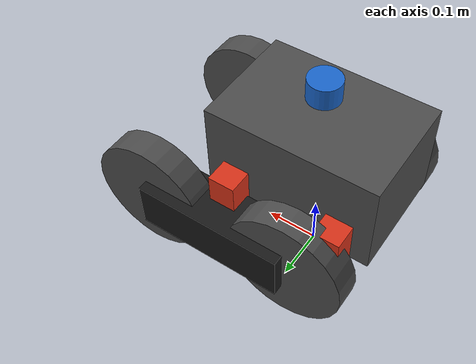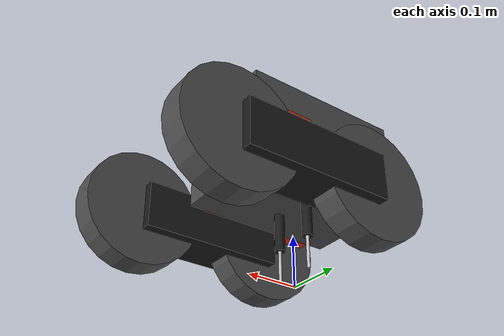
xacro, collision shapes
<?xml version="1.0"?>
<robot xmlns:xacro="http://www.ros.org/wiki/xacro" name="drobot">

  <xacro:include filename="$(find drobot_description)/urdf/properties.xacro"/>
  <xacro:include filename="$(find drobot_description)/urdf/materials.xacro"/>
  <xacro:include filename="$(find drobot_description)/urdf/macros.xacro"/>
  <xacro:include filename="$(find drobot_description)/urdf/gazebo.xacro"/>

  <xacro:arg name="use_sim" default="true"/>
  <xacro:arg name="use_ros2_control" default="true"/>

  <!-- ==================== BASE ==================== -->
  <link name="base_footprint"/>

  <joint name="base_footprint_joint" type="fixed">
    <parent link="base_footprint"/>
    <child link="base_link"/>
    <origin xyz="0 0 ${wheel_radius + base_height/2 + 0.05}" rpy="0 0 0"/>
  </joint>

  <link name="base_link">
    <visual>
      <!-- 어셈블리 STL → rpy로 Y-up→Z-up 변환 -->
      <origin xyz="${base_mesh_ox} ${base_mesh_oy} ${base_mesh_oz}"
              rpy="${asm_rpy}"/>
      <geometry>
        <mesh filename="package://drobot_description/meshes/base.stl"
              scale="0.001 0.001 0.001"/>
      </geometry>
      <material name="dark_gray"/>
    </visual>
    <collision>
      <geometry>
        <box size="${base_length} ${base_width} ${base_height}"/>
      </geometry>
    </collision>
    <inertial>
      <mass value="${base_mass}"/>
      <xacro:box_inertia m="${base_mass}" x="${base_length}" y="${base_width}" z="${base_height}"/>
    </inertial>
  </link>

  <!-- ==================== LEFT / RIGHT ==================== -->
  <xacro:side prefix="left"  y_reflect="1"/>
  <xacro:side prefix="right" y_reflect="-1"/>

  <!-- ==================== SENSORS ==================== -->
  <xacro:sensor_mount name="lidar" parent="base_link"
                       xyz="0 0 ${base_height/2 + 0.05}" rpy="0 0 0">
    <geometry><cylinder radius="0.03" length="0.04"/></geometry>
  </xacro:sensor_mount>

  <xacro:sensor_mount name="camera" parent="base_link"
                       xyz="${base_length/2} 0 0" rpy="0 0 0">
    <geometry><box size="0.03 0.08 0.03"/></geometry>
  </xacro:sensor_mount>

  <xacro:sensor_mount name="imu" parent="base_link"
                       xyz="0 0 0" rpy="0 0 0">
    <geometry><box size="0.02 0.02 0.01"/></geometry>
  </xacro:sensor_mount>

  <!-- ==================== ROS2 CONTROL ==================== -->
  <xacro:if value="$(arg use_ros2_control)">
    <xacro:include filename="$(find drobot_description)/urdf/ros2_control.xacro"/>
  </xacro:if>

</robot>

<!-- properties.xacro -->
<robot xmlns:xacro="http://www.ros.org/wiki/xacro">

  <xacro:property name="pi" value="3.14159265359"/>

  <!-- ===== Assembly→ROS 좌표 변환 =====
       SolidWorks: X=전후, Y=상하, Z=좌우
       ROS:        X=전후, Y=좌우, Z=상하
       변환: rpy="-pi/2 0 0" (Y↔Z 교환)
       ================================================ -->
  <xacro:property name="asm_rpy" value="${-pi/2} 0 0"/>

  <!-- ===== Base Body (318 x 183 x 210 mm) ===== -->
  <xacro:property name="base_length" value="0.318"/>
  <xacro:property name="base_width"  value="0.210"/>   <!-- SW Z → ROS Y -->
  <xacro:property name="base_height" value="0.183"/>   <!-- SW Y → ROS Z -->
  <xacro:property name="base_mass"   value="5.0"/>

  <!-- base mesh offset (after -90° X rotation) -->
  <xacro:property name="base_mesh_ox"  value="-0.16174"/>
  <xacro:property name="base_mesh_oy"  value="-0.19650"/>
  <xacro:property name="base_mesh_oz"  value="0.09650"/>

  <!-- ===== Arm (L자 변환 기어, 50x79x89 mm) ===== -->
  <xacro:property name="arm_size_x"  value="0.050"/>
  <xacro:property name="arm_size_y"  value="0.089"/>
  <xacro:property name="arm_size_z"  value="0.079"/>
  <xacro:property name="arm_mass"    value="0.3"/>

  <!-- arm joint 위치 (base_link 중심 기준, ROS 좌표) -->
  <xacro:property name="front_arm_x"  value="0.100"/>
  <xacro:property name="rear_arm_x"   value="-0.100"/>
  <xacro:property name="arm_y_offset" value="0.105"/>
  <xacro:property name="arm_z_offset" value="-0.050"/>

  <xacro:property name="arm_mesh_ox"  value="-0.02500"/>
  <xacro:property name="arm_mesh_oy"  value="-0.24760"/>
  <xacro:property name="arm_mesh_oz"  value="0.03934"/>

  <xacro:property name="arm_joint_lower" value="0.0"/>
  <xacro:property name="arm_joint_upper" value="${pi/2}"/>
  <xacro:property name="arm_joint_effort" value="10.0"/>
  <xacro:property name="arm_joint_velocity" value="1.0"/>

  <!-- ===== Side Frame (282 x 90 x 91 mm) ===== -->
  <xacro:property name="frame_length" value="0.282"/>
  <xacro:property name="frame_width"  value="0.091"/>
  <xacro:property name="frame_height" value="0.090"/>
  <xacro:property name="frame_mass"   value="0.5"/>

  <xacro:property name="frame_l_mesh_ox" value="-0.14106"/>
  <xacro:property name="frame_l_mesh_oy" value="-0.32545"/>
  <xacro:property name="frame_l_mesh_oz" value="0.09901"/>

  <xacro:property name="frame_r_mesh_ox" value="-0.14106"/>
  <xacro:property name="frame_r_mesh_oy" value="-0.06799"/>
  <xacro:property name="frame_r_mesh_oz" value="0.04545"/>

  <!-- arm→side_frame 연결 오프셋 -->
  <xacro:property name="arm_to_frame_x" value="0.0"/>
  <xacro:property name="arm_to_frame_y" value="0.05"/>
  <xacro:property name="arm_to_frame_z" value="-0.06"/>

  <!-- ===== Wheel (개별 파트, 223x223x52 mm) ===== -->
  <xacro:property name="wheel_radius"    value="0.1117"/>
  <xacro:property name="wheel_thickness" value="0.052"/>
  <xacro:property name="wheel_mass"      value="0.8"/>
  <xacro:property name="wheel_separation" value="${frame_length}"/>

  <xacro:property name="wheel_mesh_ox" value="-0.11173"/>
  <xacro:property name="wheel_mesh_oy" value="-0.11173"/>
  <xacro:property name="wheel_mesh_oz" value="-0.02600"/>

  <!-- ===== Linear Actuator ===== -->
  <xacro:property name="actuator_base_length" value="0.153"/>
  <xacro:property name="actuator_rod_length"  value="0.125"/>
  <xacro:property name="actuator_mass"        value="0.2"/>
  <xacro:property name="actuator_stroke"      value="0.10"/>

  <xacro:property name="act_base_mesh_ox" value="-0.00750"/>
  <xacro:property name="act_base_mesh_oy" value="-0.07650"/>
  <xacro:property name="act_base_mesh_oz" value="0.01000"/>

  <xacro:property name="act_rod_mesh_ox"  value="-0.00300"/>
  <xacro:property name="act_rod_mesh_oy"  value="-0.00450"/>
  <xacro:property name="act_rod_mesh_oz"  value="0.06250"/>

  <!-- ===== Propeller Motor ===== -->
  <xacro:property name="prop_motor_radius" value="0.02"/>
  <xacro:property name="prop_motor_length" value="0.03"/>
  <xacro:property name="prop_motor_mass"   value="0.1"/>

  <!-- ===== Tilt Joint ===== -->
  <xacro:property name="tilt_joint_lower" value="0.0"/>
  <xacro:property name="tilt_joint_upper" value="${pi/2}"/>
  <xacro:property name="tilt_joint_effort" value="15.0"/>
  <xacro:property name="tilt_joint_velocity" value="0.5"/>

</robot>

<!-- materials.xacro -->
<robot xmlns:xacro="http://www.ros.org/wiki/xacro">
  <material name="dark_gray"><color rgba="0.3 0.3 0.3 1.0"/></material>
  <material name="red"><color rgba="0.85 0.2 0.1 1.0"/></material>
  <material name="black"><color rgba="0.1 0.1 0.1 1.0"/></material>
  <material name="orange"><color rgba="1.0 0.5 0.0 1.0"/></material>
  <material name="silver"><color rgba="0.75 0.75 0.75 1.0"/></material>
  <material name="sensor_blue"><color rgba="0.1 0.4 0.8 1.0"/></material>
</robot>

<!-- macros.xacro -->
<robot xmlns:xacro="http://www.ros.org/wiki/xacro">

  <!-- ==================== INERTIA HELPERS ==================== -->

  <xacro:macro name="box_inertia" params="m x y z">
    <inertia ixx="${m*(y*y+z*z)/12}" ixy="0" ixz="0"
             iyy="${m*(x*x+z*z)/12}" iyz="0"
             izz="${m*(x*x+y*y)/12}"/>
  </xacro:macro>

  <xacro:macro name="cylinder_inertia" params="m r l">
    <inertia ixx="${m*(3*r*r+l*l)/12}" ixy="0" ixz="0"
             iyy="${m*(3*r*r+l*l)/12}" iyz="0"
             izz="${m*r*r/2}"/>
  </xacro:macro>

  <!-- ==================== SENSOR MOUNT ==================== -->

  <xacro:macro name="sensor_mount" params="name parent xyz rpy *geometry">
    <link name="${name}_link">
      <visual>
        <xacro:insert_block name="geometry"/>
        <material name="sensor_blue"/>
      </visual>
      <collision>
        <xacro:insert_block name="geometry"/>
      </collision>
      <inertial>
        <mass value="0.05"/>
        <inertia ixx="0.0001" ixy="0" ixz="0"
                 iyy="0.0001" iyz="0" izz="0.0001"/>
      </inertial>
    </link>
    <joint name="${name}_joint" type="fixed">
      <parent link="${parent}"/>
      <child link="${name}_link"/>
      <origin xyz="${xyz}" rpy="${rpy}"/>
    </joint>
  </xacro:macro>

  <!-- ==================== WHEEL (개별 파트 좌표계) ==================== -->

  <xacro:macro name="wheel" params="prefix parent xyz">
    <link name="${prefix}_wheel_link">
      <visual>
        <!-- 개별 파트 STL: rpy="pi 0 0"으로 스포크 바깥 향하게 -->
        <origin xyz="${wheel_mesh_ox} ${wheel_mesh_oy} ${wheel_mesh_oz}"
                rpy="${pi} 0 0"/>
        <geometry>
          <mesh filename="package://drobot_description/meshes/wheel.stl"
                scale="0.001 0.001 0.001"/>
        </geometry>
        <material name="dark_gray"/>
      </visual>
      <collision>
        <geometry>
          <cylinder radius="${wheel_radius}" length="${wheel_thickness}"/>
        </geometry>
      </collision>
      <inertial>
        <mass value="${wheel_mass}"/>
        <xacro:cylinder_inertia m="${wheel_mass}" r="${wheel_radius}" l="${wheel_thickness}"/>
      </inertial>
    </link>

    <joint name="${prefix}_wheel_joint" type="continuous">
      <parent link="${parent}"/>
      <child link="${prefix}_wheel_link"/>
      <origin xyz="${xyz}" rpy="${-pi/2} 0 0"/>
      <axis xyz="0 0 1"/>
      <dynamics damping="0.1" friction="0.05"/>
    </joint>

    <!-- Propeller Motor -->
    <link name="${prefix}_prop_motor_link">
      <visual>
        <geometry>
          <cylinder radius="${prop_motor_radius}" length="${prop_motor_length}"/>
        </geometry>
        <material name="orange"/>
      </visual>
      <collision>
        <geometry>
          <cylinder radius="${prop_motor_radius}" length="${prop_motor_length}"/>
        </geometry>
      </collision>
      <inertial>
        <mass value="${prop_motor_mass}"/>
        <xacro:cylinder_inertia m="${prop_motor_mass}" r="${prop_motor_radius}" l="${prop_motor_length}"/>
      </inertial>
    </link>

    <joint name="${prefix}_prop_motor_joint" type="fixed">
      <parent link="${prefix}_wheel_link"/>
      <child link="${prefix}_prop_motor_link"/>
      <origin xyz="0 0 0" rpy="0 0 0"/>
    </joint>
  </xacro:macro>

  <!-- ==================== ARM (어셈블리 좌표계) ==================== -->

  <xacro:macro name="arm" params="prefix parent xyz mimic_joint:='' y_sign:=1">
    <link name="${prefix}_arm_link">
      <visual>
        <origin xyz="${arm_mesh_ox} ${arm_mesh_oy} ${arm_mesh_oz}"
                rpy="${asm_rpy}"/>
        <geometry>
          <mesh filename="package://drobot_description/meshes/arm_left.stl"
                scale="0.001 ${0.001 * y_sign} 0.001"/>
        </geometry>
        <material name="red"/>
      </visual>
      <collision>
        <geometry>
          <box size="${arm_size_x} ${arm_size_y} ${arm_size_z}"/>
        </geometry>
      </collision>
      <inertial>
        <mass value="${arm_mass}"/>
        <xacro:box_inertia m="${arm_mass}" x="${arm_size_x}" y="${arm_size_y}" z="${arm_size_z}"/>
      </inertial>
    </link>

    <joint name="${prefix}_arm_joint" type="revolute">
      <parent link="${parent}"/>
      <child link="${prefix}_arm_link"/>
      <origin xyz="${xyz}" rpy="0 0 0"/>
      <axis xyz="0 1 0"/>
      <limit lower="${arm_joint_lower}" upper="${arm_joint_upper}"
             effort="${arm_joint_effort}" velocity="${arm_joint_velocity}"/>
      <dynamics damping="0.5" friction="0.1"/>
      <xacro:if value="${mimic_joint != ''}">
        <mimic joint="${mimic_joint}" multiplier="1.0" offset="0.0"/>
      </xacro:if>
    </joint>
  </xacro:macro>

  <!-- ==================== SIDE (좌/우 한쪽 전체) ==================== -->

  <xacro:macro name="side" params="prefix y_reflect">

    <!-- Front Arm (서보1: left=master, right=mimic) -->
    <xacro:if value="${prefix == 'left'}">
      <xacro:arm prefix="${prefix}_front" parent="base_link"
                 xyz="${front_arm_x} ${y_reflect * arm_y_offset} ${arm_z_offset}"
                 y_sign="1"/>
    </xacro:if>
    <xacro:if value="${prefix == 'right'}">
      <xacro:arm prefix="${prefix}_front" parent="base_link"
                 xyz="${front_arm_x} ${y_reflect * arm_y_offset} ${arm_z_offset}"
                 mimic_joint="left_front_arm_joint" y_sign="-1"/>
    </xacro:if>

    <!-- Rear Arm (서보2: left=master, right=mimic) -->
    <xacro:if value="${prefix == 'left'}">
      <xacro:arm prefix="${prefix}_rear" parent="base_link"
                 xyz="${rear_arm_x} ${y_reflect * arm_y_offset} ${arm_z_offset}"
                 y_sign="1"/>
    </xacro:if>
    <xacro:if value="${prefix == 'right'}">
      <xacro:arm prefix="${prefix}_rear" parent="base_link"
                 xyz="${rear_arm_x} ${y_reflect * arm_y_offset} ${arm_z_offset}"
                 mimic_joint="left_rear_arm_joint" y_sign="-1"/>
    </xacro:if>

    <!-- Side Frame (어셈블리 좌표계, 좌우 별도 STL) -->
    <link name="${prefix}_side_frame_link">
      <visual>
        <xacro:if value="${prefix == 'left'}">
          <origin xyz="${frame_l_mesh_ox} ${frame_l_mesh_oy} ${frame_l_mesh_oz}"
                  rpy="${asm_rpy}"/>
          <geometry>
            <mesh filename="package://drobot_description/meshes/side_frame_left.stl"
                  scale="0.001 0.001 0.001"/>
          </geometry>
        </xacro:if>
        <xacro:if value="${prefix == 'right'}">
          <origin xyz="${frame_r_mesh_ox} ${frame_r_mesh_oy} ${frame_r_mesh_oz}"
                  rpy="${asm_rpy}"/>
          <geometry>
            <mesh filename="package://drobot_description/meshes/side_frame_right.stl"
                  scale="0.001 0.001 0.001"/>
          </geometry>
        </xacro:if>
        <material name="black"/>
      </visual>
      <collision>
        <geometry>
          <box size="${frame_length} ${frame_width} ${frame_height}"/>
        </geometry>
      </collision>
      <inertial>
        <mass value="${frame_mass}"/>
        <xacro:box_inertia m="${frame_mass}" x="${frame_length}" y="${frame_width}" z="${frame_height}"/>
      </inertial>
    </link>

    <joint name="${prefix}_side_frame_joint" type="fixed">
      <parent link="${prefix}_front_arm_link"/>
      <child link="${prefix}_side_frame_link"/>
      <origin xyz="${arm_to_frame_x} ${y_reflect * arm_to_frame_y} ${arm_to_frame_z}" rpy="0 0 0"/>
    </joint>

    <!-- Tilt Frame -->
    <link name="${prefix}_tilt_frame_link">
      <inertial>
        <mass value="0.01"/>
        <inertia ixx="0.0001" ixy="0" ixz="0"
                 iyy="0.0001" iyz="0" izz="0.0001"/>
      </inertial>
    </link>

    <joint name="${prefix}_tilt_joint" type="revolute">
      <parent link="${prefix}_side_frame_link"/>
      <child link="${prefix}_tilt_frame_link"/>
      <origin xyz="0 0 0" rpy="0 0 0"/>
      <axis xyz="1 0 0"/>
      <limit lower="${tilt_joint_lower}" upper="${tilt_joint_upper}"
             effort="${tilt_joint_effort}" velocity="${tilt_joint_velocity}"/>
      <dynamics damping="0.5" friction="0.1"/>
    </joint>

    <!-- Actuator Base (어셈블리 좌표계) -->
    <link name="${prefix}_actuator_base_link">
      <visual>
        <origin xyz="${act_base_mesh_ox} ${act_base_mesh_oy} ${act_base_mesh_oz}"
                rpy="${asm_rpy}"/>
        <geometry>
          <mesh filename="package://drobot_description/meshes/actuator_base.stl"
                scale="0.001 0.001 0.001"/>
        </geometry>
        <material name="black"/>
      </visual>
      <collision>
        <geometry>
          <cylinder radius="0.01" length="${actuator_base_length}"/>
        </geometry>
      </collision>
      <inertial>
        <mass value="${actuator_mass * 0.7}"/>
        <xacro:cylinder_inertia m="${actuator_mass * 0.7}" r="0.01" l="${actuator_base_length}"/>
      </inertial>
    </link>

    <joint name="${prefix}_actuator_base_joint" type="fixed">
      <parent link="base_link"/>
      <child link="${prefix}_actuator_base_link"/>
      <origin xyz="0 ${y_reflect * 0.04} ${-base_height/2}" rpy="0 0 0"/>
    </joint>

    <!-- Actuator Rod (어셈블리 좌표계) -->
    <link name="${prefix}_actuator_rod_link">
      <visual>
        <origin xyz="${act_rod_mesh_ox} ${act_rod_mesh_oy} ${act_rod_mesh_oz}"
                rpy="${asm_rpy}"/>
        <geometry>
          <mesh filename="package://drobot_description/meshes/actuator_rod.stl"
                scale="0.001 0.001 0.001"/>
        </geometry>
        <material name="silver"/>
      </visual>
      <collision>
        <geometry>
          <cylinder radius="0.003" length="${actuator_rod_length}"/>
        </geometry>
      </collision>
      <inertial>
        <mass value="${actuator_mass * 0.3}"/>
        <xacro:cylinder_inertia m="${actuator_mass * 0.3}" r="0.003" l="${actuator_rod_length}"/>
      </inertial>
    </link>

    <joint name="${prefix}_actuator_joint" type="prismatic">
      <parent link="${prefix}_actuator_base_link"/>
      <child link="${prefix}_actuator_rod_link"/>
      <origin xyz="0 0 ${-actuator_base_length/2}" rpy="0 0 0"/>
      <axis xyz="0 0 -1"/>
      <limit lower="0" upper="${actuator_stroke}" effort="50.0" velocity="0.1"/>
      <dynamics damping="1.0" friction="0.5"/>
      <mimic joint="${prefix}_tilt_joint" multiplier="${actuator_stroke/(pi/2)}" offset="0.0"/>
    </joint>

    <!-- Front Wheel -->
    <xacro:wheel prefix="${prefix}_front" parent="${prefix}_tilt_frame_link"
                 xyz="${wheel_separation/2} 0 0"/>

    <!-- Rear Wheel -->
    <xacro:wheel prefix="${prefix}_rear" parent="${prefix}_tilt_frame_link"
                 xyz="${-wheel_separation/2} 0 0"/>

  </xacro:macro>

</robot>
